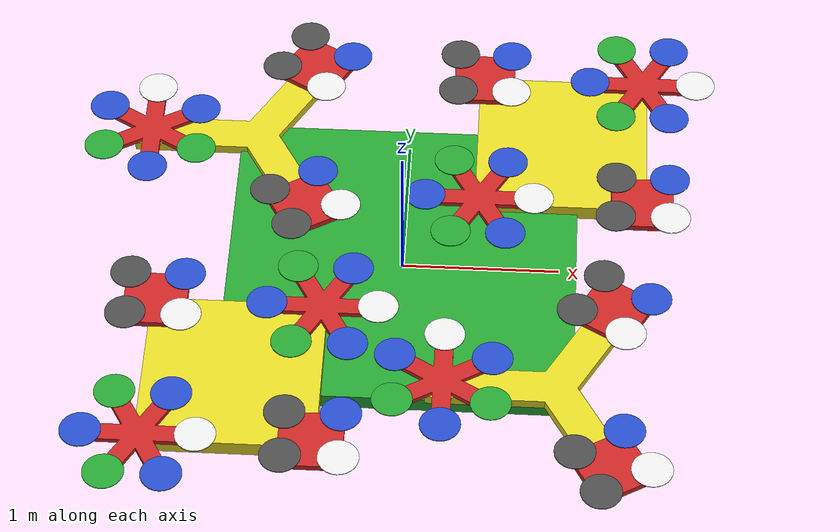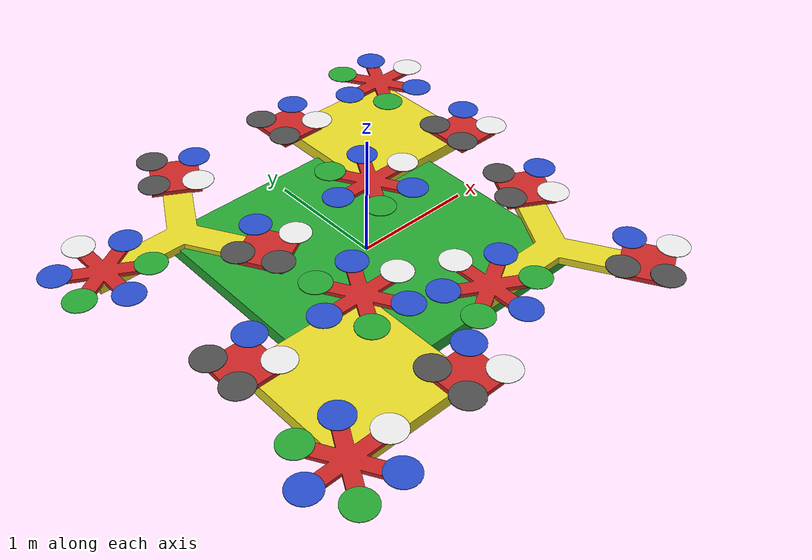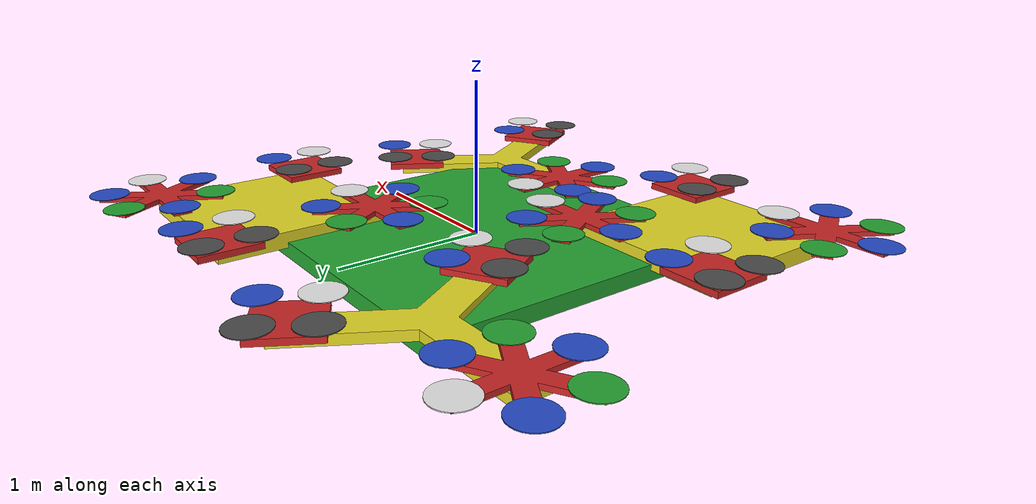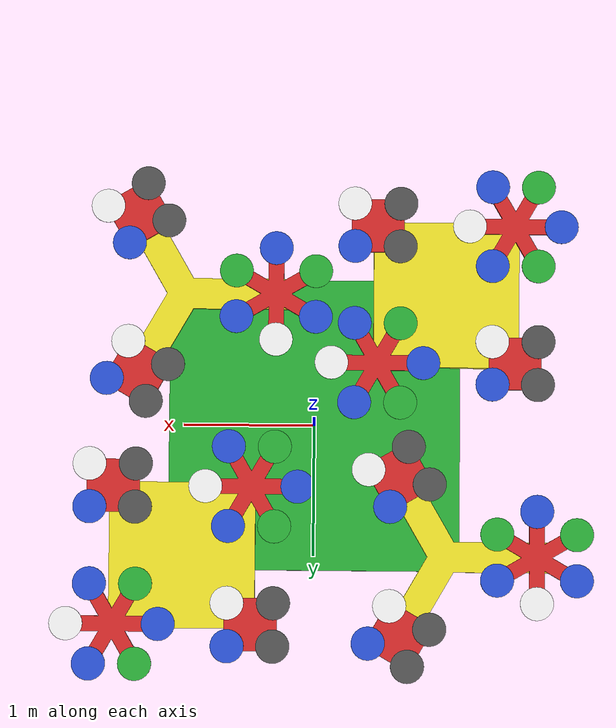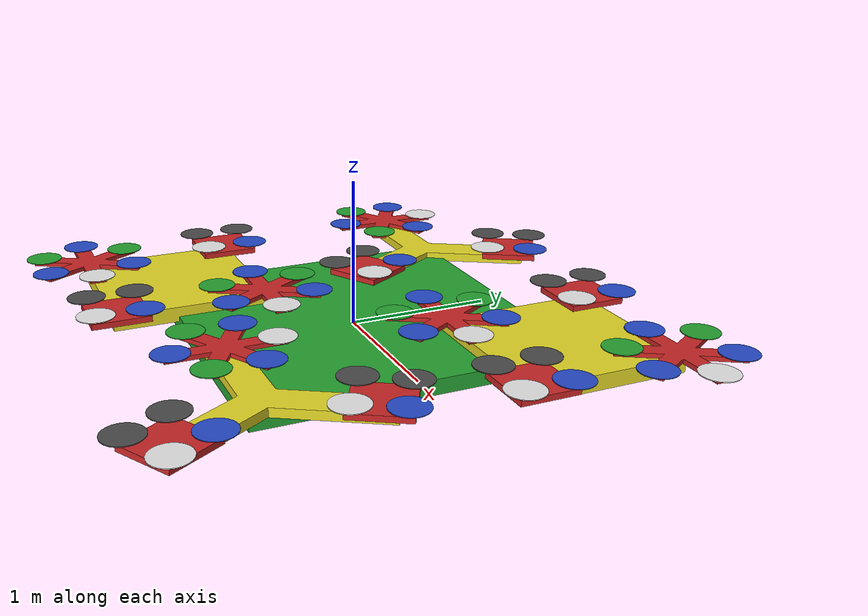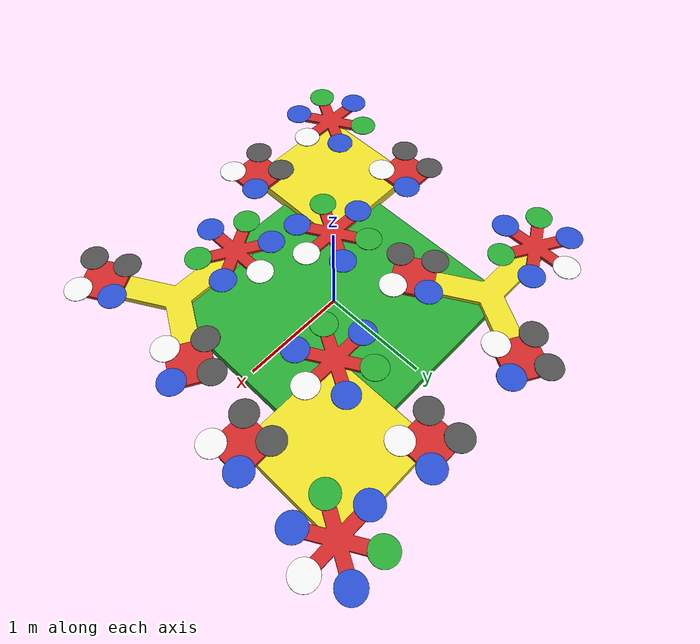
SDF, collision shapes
<sdf version='1.6'>
  <model name='quad_main'>
    <link name='base_link'>
      <pose frame=''>0 0 0 0 -0 0</pose>
      <inertial>
        <pose frame=''>0 0 0 0 -0 0</pose>
        <mass>1.5</mass>
        <inertia>
          <ixx>0.6174</ixx>
          <ixy>0</ixy>
          <ixz>0</ixz>
          <iyy>0.6174</iyy>
          <iyz>0</iyz>
          <izz>1.2321</izz>
        </inertia>
      </inertial>
      <collision name='base_link_inertia_collision'>
        <pose frame=''>0 0 0 0 -0 0</pose>
        <geometry>
          <box>
            <size>2.22 2.22 0.105</size>
          </box>
        </geometry>
        <surface>
          <contact>
            <ode>
              <min_depth>0.001</min_depth>
              <max_vel>0</max_vel>
            </ode>
          </contact>
          <friction>
            <ode/>
          </friction>
        </surface>
      </collision>
      <visual name='base_link_inertia_visual'>
        <pose frame=''>0 0 0 -1.570795 -0 1.570795</pose>
        <geometry>
          <mesh>
            <scale>0.00603 0.003165 0.00603</scale>
            <uri>model://quad_main/meshes/body_parent_new.stl</uri>
          </mesh>
        </geometry>
        <material>
          <script>
            <name>Gazebo/Green</name>
            <uri>file://media/materials/scripts/gazebo.material</uri>
          </script>
        </material>
      </visual>
      <gravity>1</gravity>
      <velocity_decay/>
    </link>

    <link name='/imu_link'>
      <pose frame=''>0 0 0 0 -0 0</pose>
      <inertial>
          <pose frame=''>0 0 0 0 -0 0</pose>
          <mass>0.015</mass>
          <inertia>
              <ixx>1e-05</ixx>
              <ixy>0</ixy>
              <ixz>0</ixz>
              <iyy>1e-05</iyy>
              <iyz>0</iyz>
              <izz>1e-05</izz>
          </inertia>
      </inertial>
    </link>
    <joint name='/imu_joint' type='revolute'>
      <child>/imu_link</child>
      <parent>base_link</parent>
      <axis>
          <xyz>1 0 0</xyz>
          <limit>
              <lower>0</lower>
              <upper>0</upper>
              <effort>0</effort>
              <velocity>0</velocity>
          </limit>
          <dynamics>
              <spring_reference>0</spring_reference>
              <spring_stiffness>0</spring_stiffness>
          </dynamics>
          <use_parent_model_frame>1</use_parent_model_frame>
      </axis>
    </joint>

    <static>0</static>

    <include>
      <uri>model://quad_rr_parent</uri>
      <pose frame=''>-1.0 -1.0 0.07 0 -0 0</pose>
    </include>
    <joint name="quad_rr_parent_link" type="fixed">
      <parent>base_link</parent>
      <child>quad_rr_parent::base_link</child>
    </joint>

    <include>
      <uri>model://tri_rl_parent</uri>
      <pose frame=''>-1.0 1.0 0.07 0 -0 0</pose>
    </include>
    <joint name="tri_rl_parent_link" type="fixed">
      <parent>base_link</parent>
      <child>tri_rl_parent::base_link</child>
    </joint>

    <include>
      <uri>model://tri_fr_parent</uri>
      <pose frame=''>1.0 -1.0 0.07 0 -0 0</pose>
    </include>
    <joint name="tri_fr_parent_link" type="fixed">
      <parent>base_link</parent>
      <child>tri_fr_parent::base_link</child>
    </joint>

    <include>
      <uri>model://quad_fl_parent</uri>
      <pose frame=''>1.0 1.0 0.07 0 -0 0</pose>
    </include>
    <joint name="quad_fl_parent_link" type="fixed">
      <parent>base_link</parent>
      <child>quad_fl_parent::base_link</child>
    </joint>

    <plugin name='gps_plugin' filename='libgazebo_gps_plugin.so'>
      <robotNamespace>quad_main</robotNamespace>
      <gpsNoise>1</gpsNoise>
    </plugin>
    <plugin name='magnetometer_plugin' filename='libgazebo_magnetometer_plugin.so'>
      <robotNamespace>quad_main</robotNamespace>
      <pubRate>20</pubRate>
      <noiseDensity>0.0004</noiseDensity>
      <randomWalk>6.4e-06</randomWalk>
      <biasCorrelationTime>600</biasCorrelationTime>
      <magTopic>/mag</magTopic>
    </plugin>
    <plugin name='barometer_plugin' filename='libgazebo_barometer_plugin.so'>
      <robotNamespace>quad_main</robotNamespace>
      <pubRate>10</pubRate>
      <baroTopic>/baro</baroTopic>
    </plugin>
    <plugin name='mavlink_interface' filename='libgazebo_mavlink_interface.so'>
      <robotNamespace>quad_main</robotNamespace>
      <imuSubTopic>/imu</imuSubTopic>
      <gpsSubTopic>/gps</gpsSubTopic>
      <magSubTopic>/mag</magSubTopic>
      <baroSubTopic>/baro</baroSubTopic>
      <mavlink_addr>INADDR_ANY</mavlink_addr>
      <mavlink_udp_port>14060</mavlink_udp_port>
      <mavlink_tcp_port>4560</mavlink_tcp_port>
      <serialEnabled>0</serialEnabled>
      <serialDevice>/dev/ttyACM0</serialDevice>
      <baudRate>921600</baudRate>
      <qgc_addr>INADDR_ANY</qgc_addr>
      <qgc_udp_port>14550</qgc_udp_port>
      <sdk_addr>INADDR_ANY</sdk_addr>
      <sdk_udp_port>13650</sdk_udp_port>
      <hil_mode>0</hil_mode>
      <hil_state_level>0</hil_state_level>
      <vehicle_is_tailsitter>0</vehicle_is_tailsitter>
      <send_vision_estimation>1</send_vision_estimation>
      <send_odometry>0</send_odometry>
      <enable_lockstep>1</enable_lockstep>
      <use_tcp>1</use_tcp>
      <motorSpeedCommandPubTopic>/gazebo/command/motor_speed</motorSpeedCommandPubTopic>
      <control_channels>
        <channel name='rotor1'>
          <input_index>0</input_index>
          <input_offset>0</input_offset>
          <input_scaling>1000</input_scaling>
          <zero_position_disarmed>0</zero_position_disarmed>
          <zero_position_armed>100</zero_position_armed>
          <joint_control_type>velocity</joint_control_type>
        </channel>
        <channel name='rotor2'>
          <input_index>1</input_index>
          <input_offset>0</input_offset>
          <input_scaling>1000</input_scaling>
          <zero_position_disarmed>0</zero_position_disarmed>
          <zero_position_armed>100</zero_position_armed>
          <joint_control_type>velocity</joint_control_type>
        </channel>
        <channel name='rotor3'>
          <input_index>2</input_index>
          <input_offset>0</input_offset>
          <input_scaling>1000</input_scaling>
          <zero_position_disarmed>0</zero_position_disarmed>
          <zero_position_armed>100</zero_position_armed>
          <joint_control_type>velocity</joint_control_type>
        </channel>
        <channel name='rotor4'>
          <input_index>3</input_index>
          <input_offset>0</input_offset>
          <input_scaling>1000</input_scaling>
          <zero_position_disarmed>0</zero_position_disarmed>
          <zero_position_armed>100</zero_position_armed>
          <joint_control_type>velocity</joint_control_type>
        </channel>
      </control_channels>
    </plugin>
    <static>0</static>
    <plugin name='rotors_gazebo_imu_plugin' filename='libgazebo_imu_plugin.so'>
      <robotNamespace>quad_main</robotNamespace>
      <linkName>/imu_link</linkName>
      <imuTopic>/imu</imuTopic>
      <gyroscopeNoiseDensity>0.0003394</gyroscopeNoiseDensity>
      <gyroscopeRandomWalk>3.8785e-05</gyroscopeRandomWalk>
      <gyroscopeBiasCorrelationTime>1000.0</gyroscopeBiasCorrelationTime>
      <gyroscopeTurnOnBiasSigma>0.0087</gyroscopeTurnOnBiasSigma>
      <accelerometerNoiseDensity>0.004</accelerometerNoiseDensity>
      <accelerometerRandomWalk>0.006</accelerometerRandomWalk>
      <accelerometerBiasCorrelationTime>300.0</accelerometerBiasCorrelationTime>
      <accelerometerTurnOnBiasSigma>0.196</accelerometerTurnOnBiasSigma>
    </plugin>

  </model>

</sdf>
